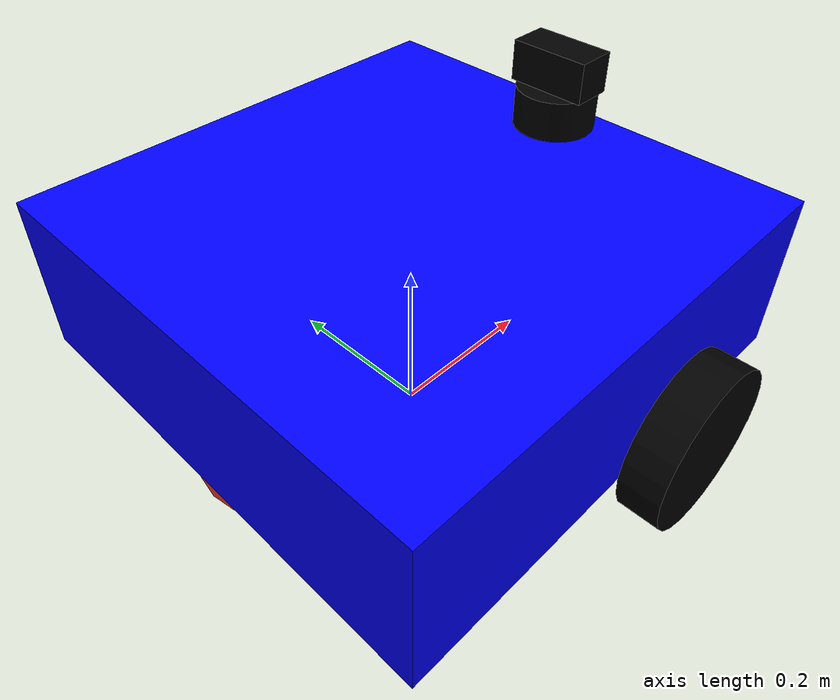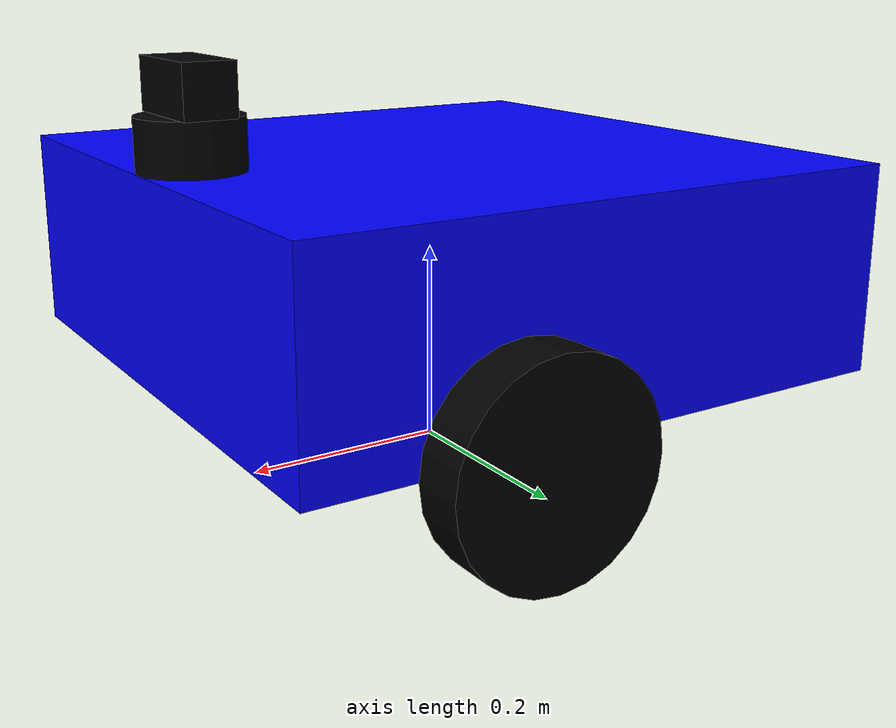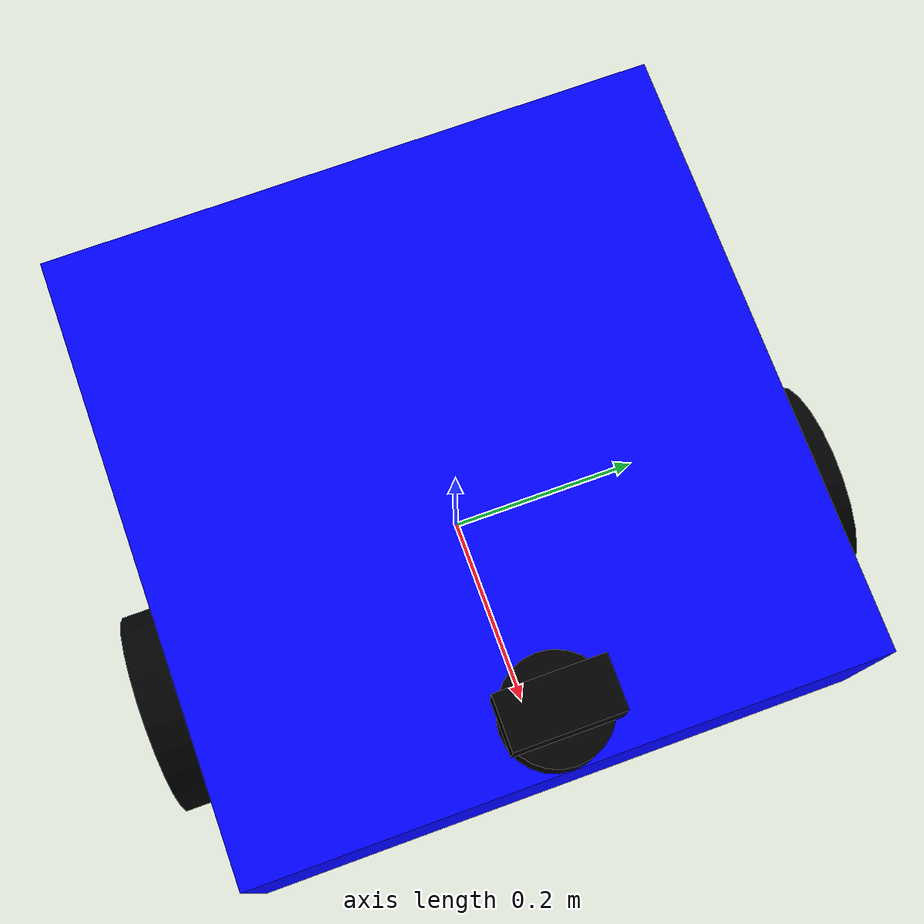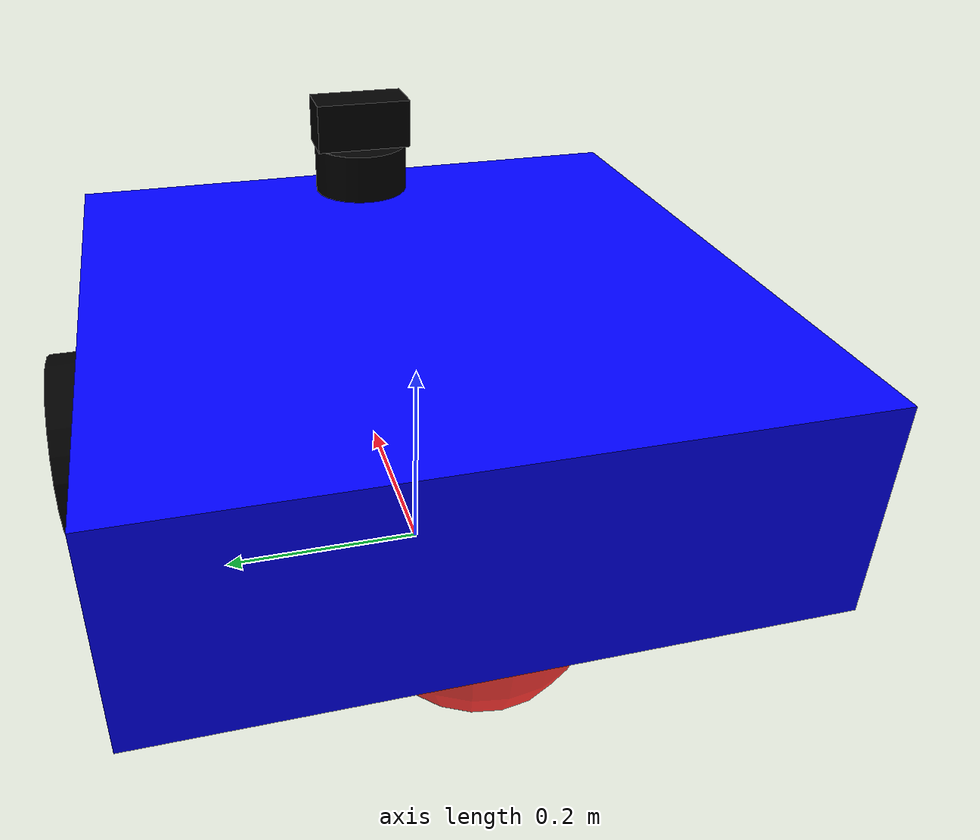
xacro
<?xml version="1.0"?>
<robot xmlns:xacro="http://www.ros.org/wiki/xacro" name="walkway_humanoid">

    <xacro:include filename="core_macros.xacro"/>

    <link name="base_footprint"/>

    <link name="base_link">
        <visual>
            <geometry>
                <box size="0.6 0.6 0.2"/>
            </geometry>
            <material name="blue">
                <color rgba="0.0 0.0 1.0 1.0"/>
            </material>
        </visual>
        <collision>
            <geometry>
                <box size="0.6 0.6 0.2"/>
            </geometry>
        </collision>
        <xacro:inertial_box mass="5.0" x="0.6" y="0.6" z="0.2">
            <origin xyz="0 0 0" rpy="0 0 0"/>
        </xacro:inertial_box>
    </link>

    <joint name="base_link_joint" type="fixed">
        <parent link="base_footprint"/>
        <child link="base_link"/>
        <origin xyz="0 0 0.2" rpy="0 0 0"/>
    </joint>

    <link name="left_wheel">
        <visual>
            <geometry>
                <cylinder radius="0.1" length="0.05"/>
            </geometry>
            <material name="black">
                <color rgba="0.0 0.0 0.0 1.0"/>
            </material>
        </visual>
        <collision>
            <geometry>
                <cylinder radius="0.1" length="0.05"/>
            </geometry>
        </collision>
        <xacro:inertial_cylinder mass="1.0" length="0.05" radius="0.1">
            <origin xyz="0 0 0" rpy="0 0 0"/>
        </xacro:inertial_cylinder>
    </link>

    <joint name="left_wheel_joint" type="continuous">
        <parent link="base_link"/>
        <child link="left_wheel"/>
        <origin xyz="0.1 0.325 -0.1" rpy="1.5708 0 0"/>
        <axis xyz="0 0 -1"/>
    </joint>

    <link name="right_wheel">
        <visual>
            <geometry>
                <cylinder radius="0.1" length="0.05"/>
            </geometry>
            <material name="black">
                <color rgba="0.0 0.0 0.0 1.0"/>
            </material>
        </visual>
        <collision>
            <geometry>
                <cylinder radius="0.1" length="0.05"/>
            </geometry>
        </collision>
        <xacro:inertial_cylinder mass="1.0" length="0.05" radius="0.1">
            <origin xyz="0 0 0" rpy="0 0 0"/>
        </xacro:inertial_cylinder>
    </link>

    <joint name="right_wheel_joint" type="continuous">
        <parent link="base_link"/>
        <child link="right_wheel"/>
        <origin xyz="0.1 -0.325 -0.1" rpy="-1.5708 0 0"/>
        <axis xyz="0 0 1"/>
    </joint>

    <link name="caster_wheel">
        <visual>
            <geometry>
                <sphere radius="0.1"/>
            </geometry>
            <material name="red">
                <color rgba="1.0 0.0 0.0 0.8"/>
            </material>
        </visual>
        <collision>
            <geometry>
                <sphere radius="0.1"/>
            </geometry>
        </collision>
        <xacro:inertial_sphere mass="0.5" radius="0.1">
            <origin xyz="0 0 0" rpy="0 0 0"/>
        </xacro:inertial_sphere>
    </link>

    <joint name="caster_wheel_joint" type="fixed">
        <parent link="base_link"/>
        <child link="caster_wheel"/>
        <origin xyz="-0.2 0.0 -0.1" rpy="0 0 0"/>
    </joint>

    <gazebo reference="caster_wheel">
        <mu1>0.0</mu1>
        <mu2>0.0</mu2>
        <material>Gazebo/Red</material>
    </gazebo>

    <gazebo reference="base_link">
        <material>Gazebo/Blue</material>
    </gazebo>

    <gazebo>
        <plugin filename="gz-sim-diff-drive-system" name="gz::sim::systems::DiffDrive">
            <left_joint>left_wheel_joint</left_joint>
            <right_joint>right_wheel_joint</right_joint>

            <wheel_separation>0.65</wheel_separation>
            <wheel_radius>0.1</wheel_radius>

            <max_linear_acceleration>2.0</max_linear_acceleration>
            <max_angular_acceleration>2.0</max_angular_acceleration>

            <odom_publish_frequency>50</odom_publish_frequency>
            <topic>cmd_vel</topic>

            <odom_topic>odom</odom_topic>
            <frame_id>odom</frame_id>
            <child_frame_id>base_footprint</child_frame_id>

            <publish_odom_tf>false</publish_odom_tf>
        </plugin>
        <plugin filename="gz-sim-joint-state-publisher-system" name="gz::sim::systems::JointStatePublisher">
            <topic>gazebo_joint_states</topic>
            <joint_name>left_wheel_joint</joint_name>
            <joint_name>right_wheel_joint</joint_name>
        </plugin>
        <plugin filename="gz-sim-imu-system" name="gz::sim::systems::Imu">
        </plugin>
    </gazebo>

    <gazebo reference="base_link">
        <sensor name="imu_sensor" type="imu">
            <always_on>1</always_on>
            <update_rate>50</update_rate>
            <visualize>true</visualize>
            <topic>imu</topic>
            <gz_frame_id>base_link</gz_frame_id>
        </sensor>
    </gazebo>

    <link name="lidar_link">
        <visual>
            <geometry>
                <cylinder radius="0.05" length="0.05"/>
            </geometry>
            <material name="black"/>
        </visual>
    </link>

    <joint name="lidar_joint" type="fixed">
        <parent link="base_link"/>
        <child link="lidar_link"/>
        <origin xyz="0.25 0 0.125" rpy="0 0 0"/> # z=0.125
    </joint>

    <gazebo reference="lidar_link">
        <sensor name="lidar" type="gpu_lidar">
            <gz_frame_id>lidar_link</gz_frame_id>
            <topic>/scan</topic>
            <update_rate>30</update_rate>
            <ray>
                <scan>
                    <horizontal>
                        <samples>360</samples>
                        <resolution>1</resolution>
                        <min_angle>-3.14159</min_angle>
                        <max_angle>3.14159</max_angle>
                    </horizontal>
                </scan>
                <range>
                    <min>0.1</min>
                    <max>10.0</max>
                </range>
            </ray>
            <always_on>true</always_on>
            <visualize>true</visualize>
        </sensor>
    </gazebo>

    <link name="camera_link">
        <visual>
            <geometry>
                <box size="0.05 0.1 0.05"/>
            </geometry>
            <material name="black"/>
        </visual>
    </link>

    <joint name="camera_joint" type="fixed">
        <parent link="base_link"/>
        <child link="camera_link"/>
        <origin xyz="0.25 0 0.175" rpy="0 0 0"/> # z=0.175
    </joint>

    <link name="camera_depth_frame"/>

    <joint name="camera_depth_joint" type="fixed">
        <parent link="camera_link"/>
        <child link="camera_depth_frame"/>
        <origin xyz="0 0 0" rpy="-1.5708 0 -1.5708"/>
    </joint>

    <gazebo reference="camera_link">
        <sensor name="rgbd_camera" type="rgbd_camera">
            <camera>
                <horizontal_fov>1.047</horizontal_fov>
                <image>
                    <width>640</width>
                    <height>480</height>
                </image>
                <clip>
                    <near>0.1</near>
                    <far>5.0</far>
                </clip>
            </camera>
            <always_on>1</always_on>
            <update_rate>10</update_rate>
            <visualize>true</visualize>
            <topic>camera/rgbd</topic>
            <gz_frame_id>camera_link</gz_frame_id>
        </sensor>
    </gazebo>

</robot>

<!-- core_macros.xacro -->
<robot xmlns:xacro="http://www.ros.org/wiki/xacro">

    <xacro:macro name="inertial_box" params="mass x y z *origin">
        <inertial>
            <xacro:insert_block name="origin"/>
            <mass value="${mass}" />
            <inertia ixx="${(1/12) * mass * (y*y+z*z)}" ixy="0.0" ixz="0.0"
                     iyy="${(1/12) * mass * (x*x+z*z)}" iyz="0.0"
                     izz="${(1/12) * mass * (x*x+y*y)}" />
        </inertial>
    </xacro:macro>

    <xacro:macro name="inertial_cylinder" params="mass length radius *origin">
        <inertial>
            <xacro:insert_block name="origin"/>
            <mass value="${mass}" />
            <inertia ixx="${(1/12) * mass * (3*radius*radius + length*length)}" ixy="0.0" ixz="0.0"
                     iyy="${(1/12) * mass * (3*radius*radius + length*length)}" iyz="0.0"
                     izz="${(1/2) * mass * (radius*radius)}" />
        </inertial>
    </xacro:macro>

    <xacro:macro name="inertial_sphere" params="mass radius *origin">
        <inertial>
            <xacro:insert_block name="origin"/>
            <mass value="${mass}" />
            <inertia ixx="${(2/5) * mass * (radius*radius)}" ixy="0.0" ixz="0.0"
                     iyy="${(2/5) * mass * (radius*radius)}" iyz="0.0"
                     izz="${(2/5) * mass * (radius*radius)}" />
        </inertial>
    </xacro:macro>

</robot>
